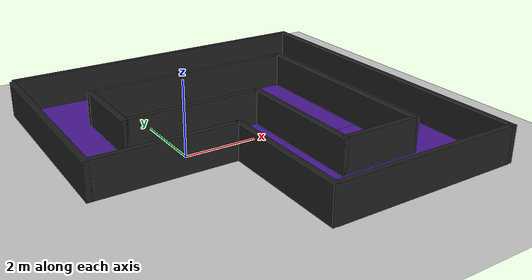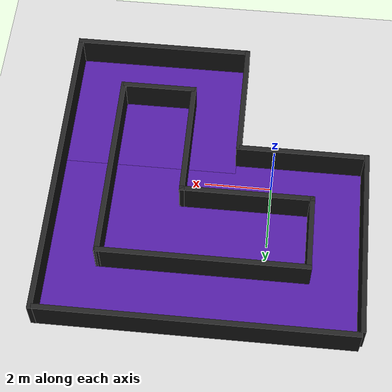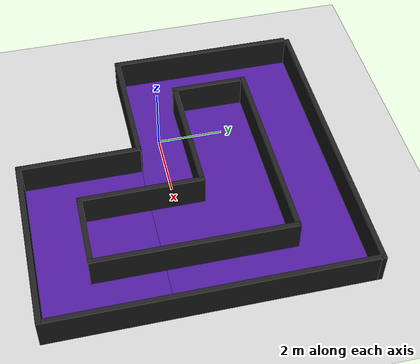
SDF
<sdf version="1.6">
 <world name="default">
  <light name="sun" type="directional">
   <pose>0 0 10 0 -0 0</pose>
   <diffuse>0.8 0.8 0.8 1</diffuse>
   <specular>0.1 0.1 0.1 1</specular>
   <attenuation>
    <range>1000</range>
    <constant>0.9</constant>
    <linear>0.01</linear>
    <quadratic>0.001</quadratic>
   </attenuation>
   <direction>-0.5 0.5 -1</direction>
  </light>
  <model name="ground_plane">
   <static>1</static>
   <link name="link">
    <collision name="collision">
     <geometry><plane><normal>0 0 1</normal><size>100 100</size></plane></geometry>
     <surface><friction><ode><mu>100</mu><mu2>50</mu2></ode></friction></surface>
    </collision>
    <visual name="visual">
     <cast_shadows>0</cast_shadows>
     <geometry><plane><normal>0 0 1</normal><size>100 100</size></plane></geometry>
     <material>
      <script><uri>file://media/materials/scripts/gazebo.material</uri><name>Gazebo/Grey</name></script>
     </material>
    </visual>
   </link>
  </model>
  <gravity>0 0 -9.8</gravity>
  <magnetic_field>6e-06 2.3e-05 -4.2e-05</magnetic_field>
  <atmosphere type="adiabatic"/>
  <physics name="default_physics" default="0" type="ode">
   <max_step_size>0.001</max_step_size>
   <real_time_factor>1</real_time_factor>
   <real_time_update_rate>1000</real_time_update_rate>
  </physics>
  <scene><ambient>0.4 0.4 0.4 1</ambient><background>0.7 0.7 0.7 1</background><shadows>1</shadows></scene>
  <spherical_coordinates>
   <surface_model>EARTH_WGS84</surface_model>
   <latitude_deg>0</latitude_deg>
   <longitude_deg>0</longitude_deg>
   <elevation>0</elevation>
   <heading_deg>0</heading_deg>
  </spherical_coordinates>
  <model name="Circuit_ql_2c">
   <link name="link_0">
    <pose>-0.02607 1.78312 0 0 -0 0</pose>
    <inertial>
     <mass>2.28469</mass>
     <inertia><ixx>6.04283</ixx><ixy>0</ixy><ixz>0</ixz><iyy>16.0094</iyy><iyz>0</iyz><izz>22.0522</izz></inertia>
     <pose>0 0 0.01 0 -0 0</pose>
    </inertial>
    <visual name="visual">
     <pose>0 0 0.01 0 -0 0</pose>
     <geometry><box><size>9.16985 5.63372 0.05</size></box></geometry>
     <material>
      <lighting>1</lighting>
      <script><uri>file://media/materials/scripts/gazebo.material</uri><name>Gazebo/Indigo</name></script>
      <emissive>0 0 0 1</emissive>
      <shader type="vertex"><normal_map>__default__</normal_map></shader>
     </material>
     <cast_shadows>0</cast_shadows>
    </visual>
    <collision name="collision">
     <pose>0 0 0.01 0 -0 0</pose>
     <geometry><box><size>9.16985 5.63372 0.05</size></box></geometry>
     <surface>
      <friction>
       <ode><mu>1</mu><mu2>1</mu2><fdir1>0 0 0</fdir1><slip1>0</slip1><slip2>0</slip2></ode>
       <torsional>
        <coefficient>1</coefficient>
        <patch_radius>0</patch_radius>
        <surface_radius>0</surface_radius>
        <use_patch_radius>1</use_patch_radius>
        <ode><slip>0</slip></ode>
       </torsional>
      </friction>
      <bounce><restitution_coefficient>0</restitution_coefficient><threshold>1e+06</threshold></bounce>
      <contact>
       <collide_without_contact>0</collide_without_contact>
       <collide_without_contact_bitmask>1</collide_without_contact_bitmask>
       <collide_bitmask>1</collide_bitmask>
       <ode>
        <soft_cfm>0</soft_cfm>
        <soft_erp>0.2</soft_erp>
        <kp>1e+13</kp>
        <kd>1</kd>
        <max_vel>0.01</max_vel>
        <min_depth>0</min_depth>
       </ode>
       <bullet>
        <split_impulse>1</split_impulse>
        <split_impulse_penetration_threshold>-0.01</split_impulse_penetration_threshold>
        <soft_cfm>0</soft_cfm>
        <soft_erp>0.2</soft_erp>
        <kp>1e+13</kp>
        <kd>1</kd>
       </bullet>
      </contact>
     </surface>
    </collision>
   </link>
   <link name="Wall_0">
    <pose>-4.6 1.725 0 0 0 -1.5708</pose>
    <visual name="Wall_0_Visual">
     <pose>0 0 0.5 0 -0 0</pose>
     <geometry><box><size>5.75 0.15 1</size></box></geometry>
     <material>
      <script><uri>file://media/materials/scripts/gazebo.material</uri><name>Gazebo/Black</name></script>
      <emissive>0 0 0 1</emissive>
     </material>
     <cast_shadows>0</cast_shadows>
    </visual>
    <collision name="Wall_0_Collision">
     <pose>0 0 0.5 0 -0 0</pose>
     <geometry><box><size>5.75 0.15 1</size></box></geometry>
     <surface>
      <friction>
       <ode><mu>1</mu><mu2>1</mu2><fdir1>0 0 0</fdir1><slip1>0</slip1><slip2>0</slip2></ode>
       <torsional>
        <coefficient>1</coefficient>
        <patch_radius>0</patch_radius>
        <surface_radius>0</surface_radius>
        <use_patch_radius>1</use_patch_radius>
        <ode><slip>0</slip></ode>
       </torsional>
      </friction>
      <bounce><restitution_coefficient>0</restitution_coefficient><threshold>1e+06</threshold></bounce>
      <contact>
       <collide_without_contact>0</collide_without_contact>
       <collide_without_contact_bitmask>1</collide_without_contact_bitmask>
       <collide_bitmask>1</collide_bitmask>
       <ode>
        <soft_cfm>0</soft_cfm>
        <soft_erp>0.2</soft_erp>
        <kp>1e+13</kp>
        <kd>1</kd>
        <max_vel>0.01</max_vel>
        <min_depth>0</min_depth>
       </ode>
       <bullet>
        <split_impulse>1</split_impulse>
        <split_impulse_penetration_threshold>-0.01</split_impulse_penetration_threshold>
        <soft_cfm>0</soft_cfm>
        <soft_erp>0.2</soft_erp>
        <kp>1e+13</kp>
        <kd>1</kd>
       </bullet>
      </contact>
     </surface>
    </collision>
   </link>
   <link name="Wall_1">
    <pose>-2.675 -1.075 0 0 -0 0</pose>
    <visual name="Wall_1_Visual">
     <pose>0 0 0.5 0 -0 0</pose>
     <geometry><box><size>4 0.15 1</size></box></geometry>
     <material>
      <script><uri>file://media/materials/scripts/gazebo.material</uri><name>Gazebo/Black</name></script>
      <emissive>0 0 0 1</emissive>
     </material>
     <cast_shadows>0</cast_shadows>
    </visual>
    <collision name="Wall_1_Collision">
     <pose>0 0 0.5 0 -0 0</pose>
     <geometry><box><size>4 0.15 1</size></box></geometry>
     <surface>
      <friction>
       <ode><mu>1</mu><mu2>1</mu2><fdir1>0 0 0</fdir1><slip1>0</slip1><slip2>0</slip2></ode>
       <torsional>
        <coefficient>1</coefficient>
        <patch_radius>0</patch_radius>
        <surface_radius>0</surface_radius>
        <use_patch_radius>1</use_patch_radius>
        <ode><slip>0</slip></ode>
       </torsional>
      </friction>
      <bounce><restitution_coefficient>0</restitution_coefficient><threshold>1e+06</threshold></bounce>
      <contact>
       <collide_without_contact>0</collide_without_contact>
       <collide_without_contact_bitmask>1</collide_without_contact_bitmask>
       <collide_bitmask>1</collide_bitmask>
       <ode>
        <soft_cfm>0</soft_cfm>
        <soft_erp>0.2</soft_erp>
        <kp>1e+13</kp>
        <kd>1</kd>
        <max_vel>0.01</max_vel>
        <min_depth>0</min_depth>
       </ode>
       <bullet>
        <split_impulse>1</split_impulse>
        <split_impulse_penetration_threshold>-0.01</split_impulse_penetration_threshold>
        <soft_cfm>0</soft_cfm>
        <soft_erp>0.2</soft_erp>
        <kp>1e+13</kp>
        <kd>1</kd>
       </bullet>
      </contact>
     </surface>
    </collision>
   </link>
   <link name="Wall_11">
    <pose>-3.036 1.559 0 0 0 -1.5708</pose>
    <visual name="Wall_11_Visual">
     <pose>0 0 0.5 0 -0 0</pose>
     <geometry><box><size>2.25 0.15 1</size></box></geometry>
     <material>
      <script><uri>file://media/materials/scripts/gazebo.material</uri><name>Gazebo/Black</name></script>
      <emissive>0 0 0 1</emissive>
     </material>
     <cast_shadows>0</cast_shadows>
    </visual>
    <collision name="Wall_11_Collision">
     <pose>0 0 0.5 0 -0 0</pose>
     <geometry><box><size>2.25 0.15 1</size></box></geometry>
     <surface>
      <friction>
       <ode><mu>1</mu><mu2>1</mu2><fdir1>0 0 0</fdir1><slip1>0</slip1><slip2>0</slip2></ode>
       <torsional>
        <coefficient>1</coefficient>
        <patch_radius>0</patch_radius>
        <surface_radius>0</surface_radius>
        <use_patch_radius>1</use_patch_radius>
        <ode><slip>0</slip></ode>
       </torsional>
      </friction>
      <bounce><restitution_coefficient>0</restitution_coefficient><threshold>1e+06</threshold></bounce>
      <contact>
       <collide_without_contact>0</collide_without_contact>
       <collide_without_contact_bitmask>1</collide_without_contact_bitmask>
       <collide_bitmask>1</collide_bitmask>
       <ode>
        <soft_cfm>0</soft_cfm>
        <soft_erp>0.2</soft_erp>
        <kp>1e+13</kp>
        <kd>1</kd>
        <max_vel>0.01</max_vel>
        <min_depth>0</min_depth>
       </ode>
       <bullet>
        <split_impulse>1</split_impulse>
        <split_impulse_penetration_threshold>-0.01</split_impulse_penetration_threshold>
        <soft_cfm>0</soft_cfm>
        <soft_erp>0.2</soft_erp>
        <kp>1e+13</kp>
        <kd>1</kd>
       </bullet>
      </contact>
     </surface>
    </collision>
   </link>
   <link name="Wall_12">
    <pose>-1.111 0.509 0 0 -0 0</pose>
    <visual name="Wall_12_Visual">
     <pose>0 0 0.5 0 -0 0</pose>
     <geometry><box><size>4 0.15 1</size></box></geometry>
     <material>
      <script><uri>file://media/materials/scripts/gazebo.material</uri><name>Gazebo/Black</name></script>
      <emissive>0 0 0 1</emissive>
     </material>
     <cast_shadows>0</cast_shadows>
    </visual>
    <collision name="Wall_12_Collision">
     <pose>0 0 0.5 0 -0 0</pose>
     <geometry><box><size>4 0.15 1</size></box></geometry>
     <surface>
      <friction>
       <ode><mu>1</mu><mu2>1</mu2><fdir1>0 0 0</fdir1><slip1>0</slip1><slip2>0</slip2></ode>
       <torsional>
        <coefficient>1</coefficient>
        <patch_radius>0</patch_radius>
        <surface_radius>0</surface_radius>
        <use_patch_radius>1</use_patch_radius>
        <ode><slip>0</slip></ode>
       </torsional>
      </friction>
      <bounce><restitution_coefficient>0</restitution_coefficient><threshold>1e+06</threshold></bounce>
      <contact>
       <collide_without_contact>0</collide_without_contact>
       <collide_without_contact_bitmask>1</collide_without_contact_bitmask>
       <collide_bitmask>1</collide_bitmask>
       <ode>
        <soft_cfm>0</soft_cfm>
        <soft_erp>0.2</soft_erp>
        <kp>1e+13</kp>
        <kd>1</kd>
        <max_vel>0.01</max_vel>
        <min_depth>0</min_depth>
       </ode>
       <bullet>
        <split_impulse>1</split_impulse>
        <split_impulse_penetration_threshold>-0.01</split_impulse_penetration_threshold>
        <soft_cfm>0</soft_cfm>
        <soft_erp>0.2</soft_erp>
        <kp>1e+13</kp>
        <kd>1</kd>
       </bullet>
      </contact>
     </surface>
    </collision>
   </link>
   <link name="Wall_13">
    <pose>0.814 -1.291 0 0 0 -1.5708</pose>
    <visual name="Wall_13_Visual">
     <pose>0 0 0.5 0 -0 0</pose>
     <geometry><box><size>3.75 0.15 1</size></box></geometry>
     <material>
      <script><uri>file://media/materials/scripts/gazebo.material</uri><name>Gazebo/Black</name></script>
      <emissive>0 0 0 1</emissive>
     </material>
     <cast_shadows>0</cast_shadows>
    </visual>
    <collision name="Wall_13_Collision">
     <pose>0 0 0.5 0 -0 0</pose>
     <geometry><box><size>3.75 0.15 1</size></box></geometry>
     <surface>
      <friction>
       <ode><mu>1</mu><mu2>1</mu2><fdir1>0 0 0</fdir1><slip1>0</slip1><slip2>0</slip2></ode>
       <torsional>
        <coefficient>1</coefficient>
        <patch_radius>0</patch_radius>
        <surface_radius>0</surface_radius>
        <use_patch_radius>1</use_patch_radius>
        <ode><slip>0</slip></ode>
       </torsional>
      </friction>
      <bounce><restitution_coefficient>0</restitution_coefficient><threshold>1e+06</threshold></bounce>
      <contact>
       <collide_without_contact>0</collide_without_contact>
       <collide_without_contact_bitmask>1</collide_without_contact_bitmask>
       <collide_bitmask>1</collide_bitmask>
       <ode>
        <soft_cfm>0</soft_cfm>
        <soft_erp>0.2</soft_erp>
        <kp>1e+13</kp>
        <kd>1</kd>
        <max_vel>0.01</max_vel>
        <min_depth>0</min_depth>
       </ode>
       <bullet>
        <split_impulse>1</split_impulse>
        <split_impulse_penetration_threshold>-0.01</split_impulse_penetration_threshold>
        <soft_cfm>0</soft_cfm>
        <soft_erp>0.2</soft_erp>
        <kp>1e+13</kp>
        <kd>1</kd>
       </bullet>
      </contact>
     </surface>
    </collision>
   </link>
   <link name="Wall_14">
    <pose>1.9 -3.091 0 0 -0 0</pose>
    <visual name="Wall_14_Visual">
     <pose>0 0 0.5 0 -0 0</pose>
     <geometry><box><size>2.25 0.15 1</size></box></geometry>
     <material>
      <script><uri>file://media/materials/scripts/gazebo.material</uri><name>Gazebo/Black</name></script>
      <emissive>0 0 0 1</emissive>
     </material>
     <cast_shadows>0</cast_shadows>
    </visual>
    <collision name="Wall_14_Collision">
     <pose>0 0 0.5 0 -0 0</pose>
     <geometry><box><size>2.25 0.15 1</size></box></geometry>
     <surface>
      <friction>
       <ode><mu>1</mu><mu2>1</mu2><fdir1>0 0 0</fdir1><slip1>0</slip1><slip2>0</slip2></ode>
       <torsional>
        <coefficient>1</coefficient>
        <patch_radius>0</patch_radius>
        <surface_radius>0</surface_radius>
        <use_patch_radius>1</use_patch_radius>
        <ode><slip>0</slip></ode>
       </torsional>
      </friction>
      <bounce><restitution_coefficient>0</restitution_coefficient><threshold>1e+06</threshold></bounce>
      <contact>
       <collide_without_contact>0</collide_without_contact>
       <collide_without_contact_bitmask>1</collide_without_contact_bitmask>
       <collide_bitmask>1</collide_bitmask>
       <ode>
        <soft_cfm>0</soft_cfm>
        <soft_erp>0.2</soft_erp>
        <kp>1e+13</kp>
        <kd>1</kd>
        <max_vel>0.01</max_vel>
        <min_depth>0</min_depth>
       </ode>
       <bullet>
        <split_impulse>1</split_impulse>
        <split_impulse_penetration_threshold>-0.01</split_impulse_penetration_threshold>
        <soft_cfm>0</soft_cfm>
        <soft_erp>0.2</soft_erp>
        <kp>1e+13</kp>
        <kd>1</kd>
       </bullet>
      </contact>
     </surface>
    </collision>
   </link>
   <link name="Wall_15">
    <pose>3.0215 -0.1735 0 0 -0 1.56823</pose>
    <visual name="Wall_15_Visual">
     <pose>0 0 0.5 0 -0 0</pose>
     <geometry><box><size>5.98502 0.15 1</size></box></geometry>
     <material>
      <script><uri>file://media/materials/scripts/gazebo.material</uri><name>Gazebo/Black</name></script>
      <emissive>0 0 0 1</emissive>
     </material>
     <cast_shadows>0</cast_shadows>
    </visual>
    <collision name="Wall_15_Collision">
     <pose>0 0 0.5 0 -0 0</pose>
     <geometry><box><size>5.98502 0.15 1</size></box></geometry>
     <surface>
      <friction>
       <ode><mu>1</mu><mu2>1</mu2><fdir1>0 0 0</fdir1><slip1>0</slip1><slip2>0</slip2></ode>
       <torsional>
        <coefficient>1</coefficient>
        <patch_radius>0</patch_radius>
        <surface_radius>0</surface_radius>
        <use_patch_radius>1</use_patch_radius>
        <ode><slip>0</slip></ode>
       </torsional>
      </friction>
      <bounce><restitution_coefficient>0</restitution_coefficient><threshold>1e+06</threshold></bounce>
      <contact>
       <collide_without_contact>0</collide_without_contact>
       <collide_without_contact_bitmask>1</collide_without_contact_bitmask>
       <collide_bitmask>1</collide_bitmask>
       <ode>
        <soft_cfm>0</soft_cfm>
        <soft_erp>0.2</soft_erp>
        <kp>1e+13</kp>
        <kd>1</kd>
        <max_vel>0.01</max_vel>
        <min_depth>0</min_depth>
       </ode>
       <bullet>
        <split_impulse>1</split_impulse>
        <split_impulse_penetration_threshold>-0.01</split_impulse_penetration_threshold>
        <soft_cfm>0</soft_cfm>
        <soft_erp>0.2</soft_erp>
        <kp>1e+13</kp>
        <kd>1</kd>
       </bullet>
      </contact>
     </surface>
    </collision>
   </link>
   <link name="Wall_16">
    <pose>-0.02 2.744 0 0 -0 3.14159</pose>
    <visual name="Wall_16_Visual">
     <pose>0 0 0.5 0 -0 0</pose>
     <geometry><box><size>6.2 0.15 1</size></box></geometry>
     <material>
      <script><uri>file://media/materials/scripts/gazebo.material</uri><name>Gazebo/Black</name></script>
      <emissive>0 0 0 1</emissive>
     </material>
     <cast_shadows>0</cast_shadows>
    </visual>
    <collision name="Wall_16_Collision">
     <pose>0 0 0.5 0 -0 0</pose>
     <geometry><box><size>6.2 0.15 1</size></box></geometry>
     <surface>
      <friction>
       <ode><mu>1</mu><mu2>1</mu2><fdir1>0 0 0</fdir1><slip1>0</slip1><slip2>0</slip2></ode>
       <torsional>
        <coefficient>1</coefficient>
        <patch_radius>0</patch_radius>
        <surface_radius>0</surface_radius>
        <use_patch_radius>1</use_patch_radius>
        <ode><slip>0</slip></ode>
       </torsional>
      </friction>
      <bounce><restitution_coefficient>0</restitution_coefficient><threshold>1e+06</threshold></bounce>
      <contact>
       <collide_without_contact>0</collide_without_contact>
       <collide_without_contact_bitmask>1</collide_without_contact_bitmask>
       <collide_bitmask>1</collide_bitmask>
       <ode>
        <soft_cfm>0</soft_cfm>
        <soft_erp>0.2</soft_erp>
        <kp>1e+13</kp>
        <kd>1</kd>
        <max_vel>0.01</max_vel>
        <min_depth>0</min_depth>
       </ode>
       <bullet>
        <split_impulse>1</split_impulse>
        <split_impulse_penetration_threshold>-0.01</split_impulse_penetration_threshold>
        <soft_cfm>0</soft_cfm>
        <soft_erp>0.2</soft_erp>
        <kp>1e+13</kp>
        <kd>1</kd>
       </bullet>
      </contact>
     </surface>
    </collision>
   </link>
   <link name="Wall_2">
    <pose>-0.75 -2.875 0 0 0 -1.5708</pose>
    <visual name="Wall_2_Visual">
     <pose>0 0 0.5 0 -0 0</pose>
     <geometry><box><size>3.7 0.15 1</size></box></geometry>
     <material>
      <script><uri>file://media/materials/scripts/gazebo.material</uri><name>Gazebo/Black</name></script>
      <emissive>0 0 0 1</emissive>
     </material>
     <cast_shadows>0</cast_shadows>
    </visual>
    <collision name="Wall_2_Collision">
     <pose>0 0 0.5 0 -0 0</pose>
     <geometry><box><size>3.7 0.15 1</size></box></geometry>
     <surface>
      <friction>
       <ode><mu>1</mu><mu2>1</mu2><fdir1>0 0 0</fdir1><slip1>0</slip1><slip2>0</slip2></ode>
       <torsional>
        <coefficient>1</coefficient>
        <patch_radius>0</patch_radius>
        <surface_radius>0</surface_radius>
        <use_patch_radius>1</use_patch_radius>
        <ode><slip>0</slip></ode>
       </torsional>
      </friction>
      <bounce><restitution_coefficient>0</restitution_coefficient><threshold>1e+06</threshold></bounce>
      <contact>
       <collide_without_contact>0</collide_without_contact>
       <collide_without_contact_bitmask>1</collide_without_contact_bitmask>
       <collide_bitmask>1</collide_bitmask>
       <ode>
        <soft_cfm>0</soft_cfm>
        <soft_erp>0.2</soft_erp>
        <kp>1e+13</kp>
        <kd>1</kd>
        <max_vel>0.01</max_vel>
        <min_depth>0</min_depth>
       </ode>
       <bullet>
        <split_impulse>1</split_impulse>
        <split_impulse_penetration_threshold>-0.01</split_impulse_penetration_threshold>
        <soft_cfm>0</soft_cfm>
        <soft_erp>0.2</soft_erp>
        <kp>1e+13</kp>
        <kd>1</kd>
       </bullet>
      </contact>
     </surface>
    </collision>
   </link>
   <link name="Wall_3">
    <pose>1.925 -4.675 0 0 -0 0</pose>
    <visual name="Wall_3_Visual">
     <pose>0 0 0.5 0 -0 0</pose>
     <geometry><box><size>5.5 0.15 1</size></box></geometry>
     <material>
      <script><uri>file://media/materials/scripts/gazebo.material</uri><name>Gazebo/Black</name></script>
      <emissive>0 0 0 1</emissive>
     </material>
     <cast_shadows>0</cast_shadows>
    </visual>
    <collision name="Wall_3_Collision">
     <pose>0 0 0.5 0 -0 0</pose>
     <geometry><box><size>5.5 0.15 1</size></box></geometry>
     <surface>
      <friction>
       <ode><mu>1</mu><mu2>1</mu2><fdir1>0 0 0</fdir1><slip1>0</slip1><slip2>0</slip2></ode>
       <torsional>
        <coefficient>1</coefficient>
        <patch_radius>0</patch_radius>
        <surface_radius>0</surface_radius>
        <use_patch_radius>1</use_patch_radius>
        <ode><slip>0</slip></ode>
       </torsional>
      </friction>
      <bounce><restitution_coefficient>0</restitution_coefficient><threshold>1e+06</threshold></bounce>
      <contact>
       <collide_without_contact>0</collide_without_contact>
       <collide_without_contact_bitmask>1</collide_without_contact_bitmask>
       <collide_bitmask>1</collide_bitmask>
       <ode>
        <soft_cfm>0</soft_cfm>
        <soft_erp>0.2</soft_erp>
        <kp>1e+13</kp>
        <kd>1</kd>
        <max_vel>0.01</max_vel>
        <min_depth>0</min_depth>
       </ode>
       <bullet>
        <split_impulse>1</split_impulse>
        <split_impulse_penetration_threshold>-0.01</split_impulse_penetration_threshold>
        <soft_cfm>0</soft_cfm>
        <soft_erp>0.2</soft_erp>
        <kp>1e+13</kp>
        <kd>1</kd>
       </bullet>
      </contact>
     </surface>
    </collision>
   </link>
   <link name="Wall_7">
    <pose>4.6 0 0 0 -0 1.5708</pose>
    <visual name="Wall_7_Visual">
     <pose>0 0 0.5 0 -0 0</pose>
     <geometry><box><size>9.5 0.15 1</size></box></geometry>
     <material>
      <script><uri>file://media/materials/scripts/gazebo.material</uri><name>Gazebo/Black</name></script>
      <emissive>0 0 0 1</emissive>
     </material>
     <cast_shadows>0</cast_shadows>
    </visual>
    <collision name="Wall_7_Collision">
     <pose>0 0 0.5 0 -0 0</pose>
     <geometry><box><size>9.5 0.15 1</size></box></geometry>
     <surface>
      <friction>
       <ode><mu>1</mu><mu2>1</mu2><fdir1>0 0 0</fdir1><slip1>0</slip1><slip2>0</slip2></ode>
       <torsional>
        <coefficient>1</coefficient>
        <patch_radius>0</patch_radius>
        <surface_radius>0</surface_radius>
        <use_patch_radius>1</use_patch_radius>
        <ode><slip>0</slip></ode>
       </torsional>
      </friction>
      <bounce><restitution_coefficient>0</restitution_coefficient><threshold>1e+06</threshold></bounce>
      <contact>
       <collide_without_contact>0</collide_without_contact>
       <collide_without_contact_bitmask>1</collide_without_contact_bitmask>
       <collide_bitmask>1</collide_bitmask>
       <ode>
        <soft_cfm>0</soft_cfm>
        <soft_erp>0.2</soft_erp>
        <kp>1e+13</kp>
        <kd>1</kd>
        <max_vel>0.01</max_vel>
        <min_depth>0</min_depth>
       </ode>
       <bullet>
        <split_impulse>1</split_impulse>
        <split_impulse_penetration_threshold>-0.01</split_impulse_penetration_threshold>
        <soft_cfm>0</soft_cfm>
        <soft_erp>0.2</soft_erp>
        <kp>1e+13</kp>
        <kd>1</kd>
       </bullet>
      </contact>
     </surface>
    </collision>
   </link>
   <link name="Wall_9">
    <pose>0.05 4.675 0 0 -0 3.14159</pose>
    <visual name="Wall_9_Visual">
     <pose>0 0 0.5 0 -0 0</pose>
     <geometry><box><size>9.25 0.15 1</size></box></geometry>
     <material>
      <script><uri>file://media/materials/scripts/gazebo.material</uri><name>Gazebo/Black</name></script>
      <emissive>0 0 0 1</emissive>
     </material>
     <cast_shadows>0</cast_shadows>
    </visual>
    <collision name="Wall_9_Collision">
     <pose>0 0 0.5 0 -0 0</pose>
     <geometry><box><size>9.25 0.15 1</size></box></geometry>
     <surface>
      <friction>
       <ode><mu>1</mu><mu2>1</mu2><fdir1>0 0 0</fdir1><slip1>0</slip1><slip2>0</slip2></ode>
       <torsional>
        <coefficient>1</coefficient>
        <patch_radius>0</patch_radius>
        <surface_radius>0</surface_radius>
        <use_patch_radius>1</use_patch_radius>
        <ode><slip>0</slip></ode>
       </torsional>
      </friction>
      <bounce><restitution_coefficient>0</restitution_coefficient><threshold>1e+06</threshold></bounce>
      <contact>
       <collide_without_contact>0</collide_without_contact>
       <collide_without_contact_bitmask>1</collide_without_contact_bitmask>
       <collide_bitmask>1</collide_bitmask>
       <ode>
        <soft_cfm>0</soft_cfm>
        <soft_erp>0.2</soft_erp>
        <kp>1e+13</kp>
        <kd>1</kd>
        <max_vel>0.01</max_vel>
        <min_depth>0</min_depth>
       </ode>
       <bullet>
        <split_impulse>1</split_impulse>
        <split_impulse_penetration_threshold>-0.01</split_impulse_penetration_threshold>
        <soft_cfm>0</soft_cfm>
        <soft_erp>0.2</soft_erp>
        <kp>1e+13</kp>
        <kd>1</kd>
       </bullet>
      </contact>
     </surface>
    </collision>
   </link>
   <link name="link_0_clone">
    <pose>1.94281 -2.73444 0 0 -0 0</pose>
    <inertial>
     <mass>0.684711</mass>
     <inertia><ixx>0.860788</ixx><ixy>0</ixy><ixz>0</ixz><iyy>1.53132</iyy><iyz>0</iyz><izz>2.51187</izz></inertia>
     <pose>0 0 0.01 0 -0 0</pose>
    </inertial>
    <visual name="visual">
     <pose>0 0 0.01 0 -0 0</pose>
     <geometry><box><size>5.28078 4.01687 0.05</size></box></geometry>
     <material>
      <lighting>1</lighting>
      <script><uri>file://media/materials/scripts/gazebo.material</uri><name>Gazebo/Indigo</name></script>
      <emissive>0 0 0 1</emissive>
      <shader type="pixel"/>
     </material>
     <cast_shadows>0</cast_shadows>
    </visual>
    <collision name="collision">
     <pose>0 0 0.01 0 -0 0</pose>
     <geometry><box><size>5.28078 4.01687 0.05</size></box></geometry>
     <surface>
      <friction>
       <ode><mu>1</mu><mu2>1</mu2><fdir1>0 0 0</fdir1><slip1>0</slip1><slip2>0</slip2></ode>
       <torsional>
        <coefficient>1</coefficient>
        <patch_radius>0</patch_radius>
        <surface_radius>0</surface_radius>
        <use_patch_radius>1</use_patch_radius>
        <ode><slip>0</slip></ode>
       </torsional>
      </friction>
      <bounce><restitution_coefficient>0</restitution_coefficient><threshold>1e+06</threshold></bounce>
      <contact>
       <collide_without_contact>0</collide_without_contact>
       <collide_without_contact_bitmask>1</collide_without_contact_bitmask>
       <collide_bitmask>1</collide_bitmask>
       <ode>
        <soft_cfm>0</soft_cfm>
        <soft_erp>0.2</soft_erp>
        <kp>1e+13</kp>
        <kd>1</kd>
        <max_vel>0.01</max_vel>
        <min_depth>0</min_depth>
       </ode>
       <bullet>
        <split_impulse>1</split_impulse>
        <split_impulse_penetration_threshold>-0.01</split_impulse_penetration_threshold>
        <soft_cfm>0</soft_cfm>
        <soft_erp>0.2</soft_erp>
        <kp>1e+13</kp>
        <kd>1</kd>
       </bullet>
      </contact>
     </surface>
    </collision>
   </link>
   <static>1</static>
   <pose>1.81225 0.278654 0 0 -0 0</pose>
  </model>
 </world>
</sdf>
